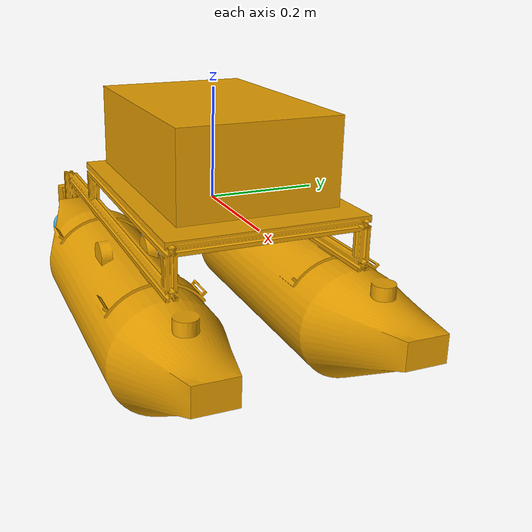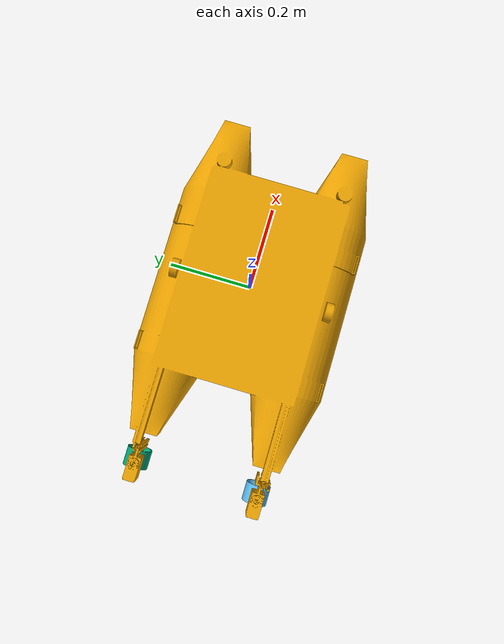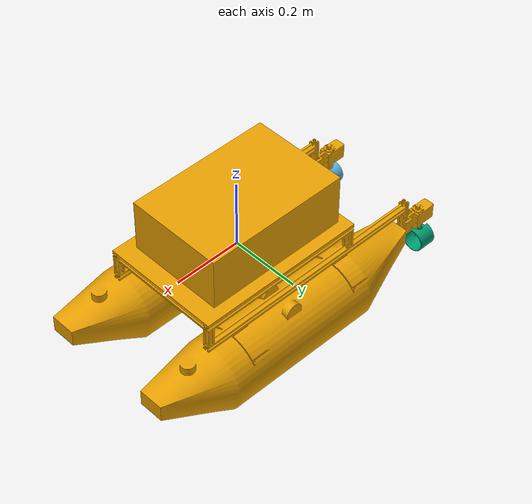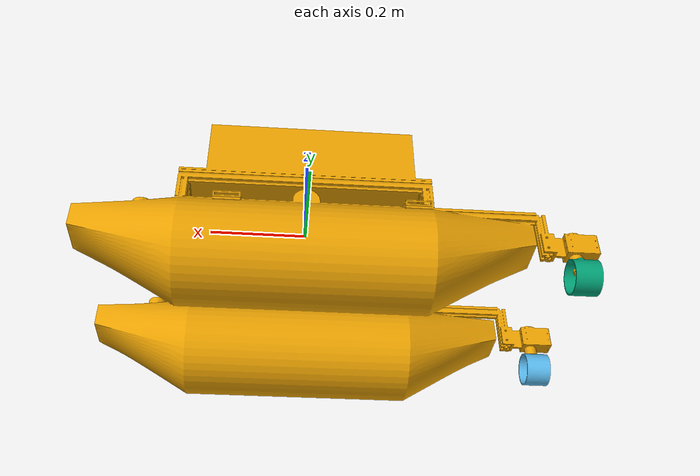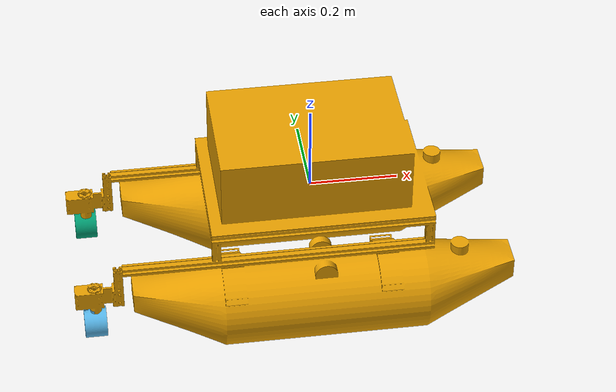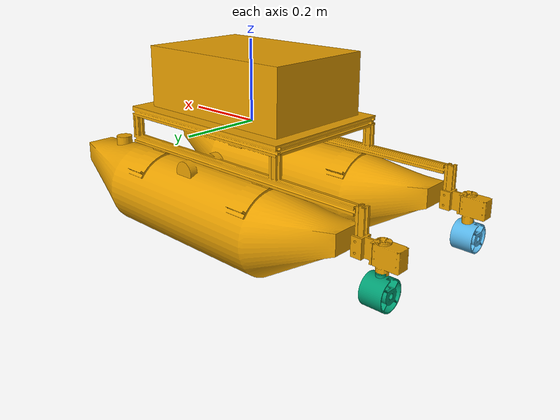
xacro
<?xml version="1.0"?>
<robot
    name="mini-v"
    xmlns:xacro="http://ros.org/wiki/xacro"
    xmlns:sensor="http://playerstage.sourceforge.net/gazebo/xmlschema/#sensor"
    xmlns:controller="http://playerstage.sourceforge.net/gazebo/xmlschema/#controller"
    xmlns:interface="http://playerstage.sourceforge.net/gazebo/xmlschema/#interface">

  <link name="base_link">
    <visual>
      <origin xyz="0 0 0" rpy="0 0 0"/>
      <geometry>
        <mesh filename="package://miniv_description/model/A_MINI_POLARIS_main_r1.stl" scale="1 1 1"/>
      </geometry>
    </visual>
  </link>

  <xacro:include filename="$(find miniv_description)/urdf/thruster.xacro"/>
  <xacro:thruster enable_dummy="false"/>
</robot>

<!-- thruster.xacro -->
<robot name="thruster"
  xmlns:xacro="http://ros.org/wiki/xacro"
  xmlns:sensor="http://playerstage.sourceforge.net/gazebo/xmlschema/#sensor"
  xmlns:controller="http://playerstage.sourceforge.net/gazebo/xmlschema/#controller"
  xmlns:interface="http://playerstage.sourceforge.net/gazebo/xmlschema/#interface">

  <xacro:macro name="thruster" params="enable_dummy thruster_ip_address='192.168.0.25' thruster_port=12345">
    <xacro:include filename="$(find miniv_description)/urdf/azimuth_thruster.xacro"/>
    <xacro:azimuth_thruster prefix="right" position="-0.51 -0.17 -0.17" orientation="0 0 0"/>
    <xacro:azimuth_thruster prefix="left" position="-0.51 0.17 -0.17" orientation="0 0 0"/>

    <xacro:include filename="$(find miniv_description)/urdf/main_thruster.xacro"/>
    <xacro:main_thruster prefix="right" position="0.0 0.0 -0.05" orientation="0 0 3.14159265359"/>
    <xacro:main_thruster prefix="left" position="0.0 0.0 -0.05" orientation="0 0 3.14159265359"/>

    <xacro:include filename="$(find miniv_description)/urdf/miniv.ros2_control.xacro"/>
    <xacro:azimuth_thruster_control
      left_joint="left_azimuth_joint"
      right_joint="right_azimuth_joint"
      enable_dummy="${enable_dummy}"/>

    <xacro:main_thruster_control
      enable_dummy="${enable_dummy}"
      ip_address="${thruster_ip_address}"
      port="${thruster_port}"
      left_thruster_joint="left_thruster_joint"
      right_thruster_joint="right_thruster_joint"/>
  </xacro:macro>
</robot>

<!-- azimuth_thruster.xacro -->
<robot xmlns:xacro="http://ros.org/wiki/xacro" name="azimuth_thruster">
  <xacro:macro name="azimuth_thruster" params="prefix position:='0 0 0' orientation:='0 0 0'">
  <link name="${prefix}_azimuth_link">
    <visual>
      <origin xyz="-0.025 0.0 -0.05" rpy="1.570795 0 1.570795"/>
      <geometry>
        <mesh filename="package://miniv_description/model/A_MINI_POLARIS_thruster.stl" scale="0.001 0.001 0.001"/>
      </geometry>
    </visual>
  </link>
  <joint name ="${prefix}_azimuth_joint" type="fixed">
    <origin xyz="${position}" rpy="${orientation}"/>
    <parent link="base_link"/>
    <child link="${prefix}_azimuth_link"/>
  </joint>
  </xacro:macro>
</robot>

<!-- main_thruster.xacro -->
<robot xmlns:xacro="http://ros.org/wiki/xacro" name="azimuth_thruster">
  <xacro:macro name="main_thruster" params="prefix position:='0 0 0' orientation:='0 0 0'">
  <link name="${prefix}_thruster_link">
  </link>
  <joint name ="${prefix}_thruster_joint" type="fixed">
    <origin xyz="${position}" rpy="${orientation}"/>
    <parent link="${prefix}_azimuth_link"/>
    <child link="${prefix}_thruster_link"/>
  </joint>
  </xacro:macro>
</robot>
